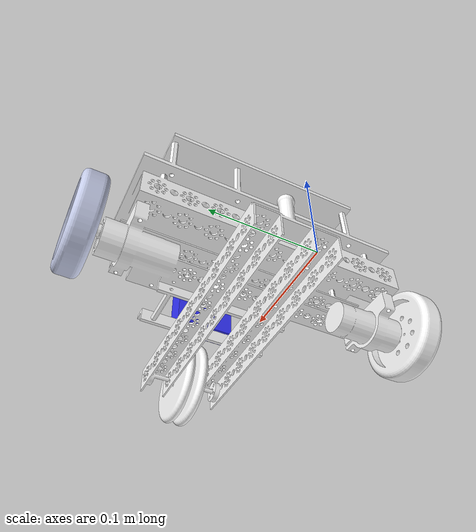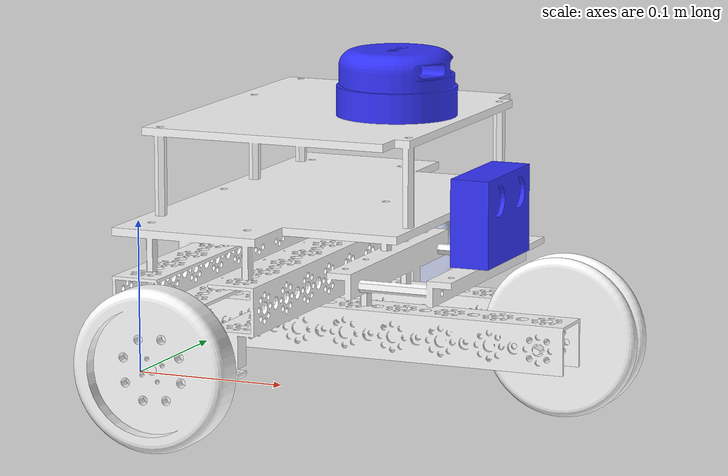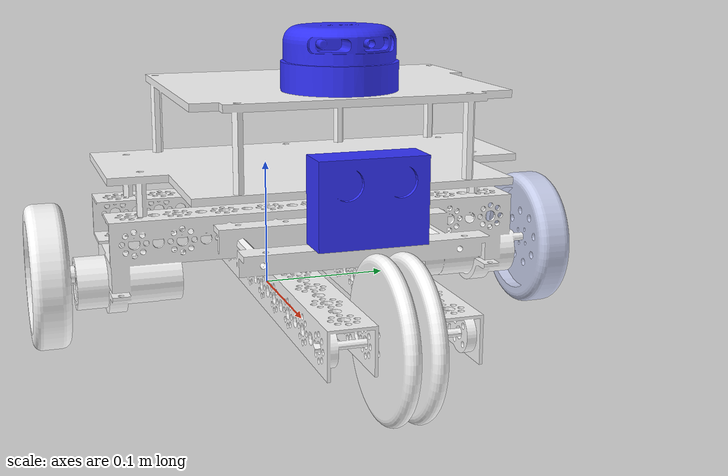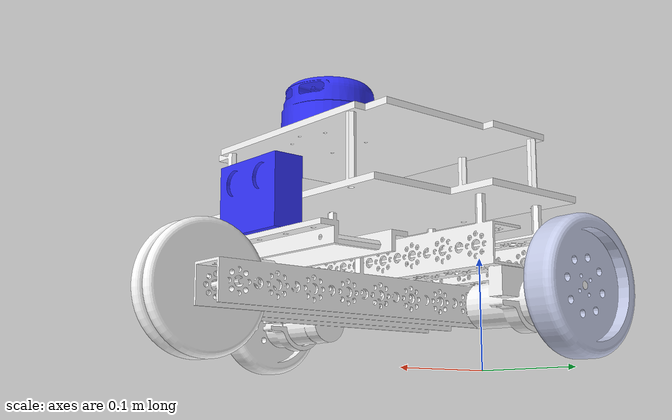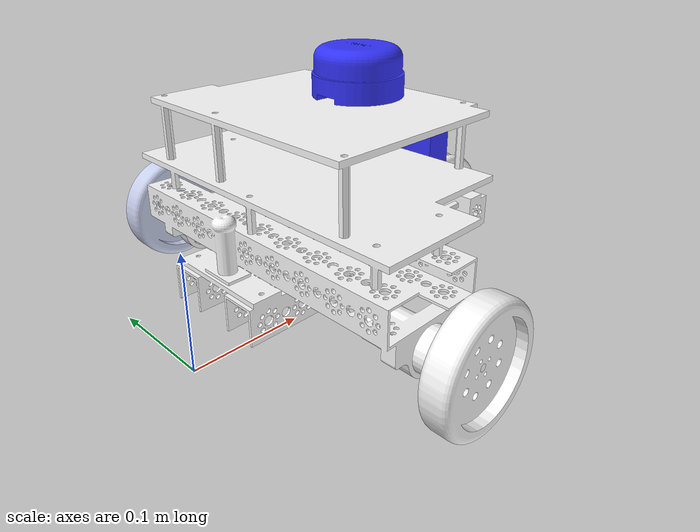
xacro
<?xml version="1.0" encoding="utf-8"?>
<robot name="universal_amr">

  <material name="White">
      <color rgba="1 1 1 1"/>
  </material>

  <material name="Orange">
      <color rgba="1 0.3 0.1 1"/>
  </material>

  <material name="Blue">
      <color rgba="0.2 0.2 1 1"/>
  </material>

  <material name="Black">
      <color rgba="0 0 0 1"/>
  </material>

  <link name="dummy_link">

  </link>

  <joint name="dummy_joint" type="fixed">
    <parent link="dummy_link"/>
    <child link="base_link"/>
  </joint>

  <link name="base_link">
    <visual>
      <origin xyz="0 0 0" rpy="0 0 0" />
      <geometry>
        <mesh filename="package://amr_bot/design/meshes/base_link.stl" />
      </geometry>
      <material name="White"/>
    </visual>
    <collision>
      <origin xyz="0 0 0" rpy="0 0 0" />
      <geometry>
        <mesh filename="package://amr_bot/design/meshes/base_link.stl"/>
      </geometry>
    </collision>
    <inertial>
      <origin xyz="0.1296 0.0014 0.1036" rpy="0 0 0" />
      <mass value="0.8044" />
      <inertia ixx="0.0026" ixy="0.1" ixz="0.1" iyy="0.0015" iyz="0.1" izz="0.0041" />
    </inertial>
  </link>

  <link name="right_wheel">
    <visual>
      <origin xyz="0 0 0" rpy="0 0 0" />
      <geometry>
        <mesh filename="package://amr_bot/design/meshes/right_wheel.stl" />
      </geometry>
      <material name="White"/>
    </visual>
    <collision>
      <origin xyz="0 0 0" rpy="0 0 0" />
      <geometry>
        <mesh filename="package://amr_bot/design/meshes/right_wheel.stl" />
      </geometry>
    </collision>
    <inertial>
      <origin xyz="0 0.0035 0" rpy="0 0 0" />
      <mass value="0.1036" />
      <inertia ixx="0.1" ixy="0.1" ixz="0.1" iyy="0.0002" iyz="0.1" izz="0.1" />
    </inertial>
  </link>

  <joint name="right_wheel_joint" type="continuous">
    <origin xyz="0.1005 -0.1852 0.0495" py="0 0 0" />
    <parent link="base_link" />
    <child link="right_wheel" />
    <axis xyz="0 1 0" />
  </joint>

  <link name="left_wheel">
    <visual>
      <origin xyz="0 0 0" rpy="0 0 0" />
      <geometry>
        <mesh filename="package://amr_bot/design/meshes/left_wheel.stl" />
      </geometry>
      <material name="">
        <color rgba="0.7960 0.8235 0.9372 1" />
      </material>
    </visual>
    <collision>
      <origin xyz="0 0 0" rpy="0 0 0" />
      <geometry>
        <mesh filename="package://amr_bot/design/meshes/left_wheel.stl" />
      </geometry>
    </collision>
    <inertial>
      <origin xyz="-1.5339 -0.0034 -8.1362" rpy="0 0 0" />
      <mass value="0.1036" />
      <inertia ixx="0.1" ixy="-0.1" ixz="0.1" iyy="0.0002" iyz="0.1" izz="0.1" />
    </inertial>
  </link>

  <joint name="left_wheel_joint" type="continuous">
    <origin xyz="0.1016 0.18525 0.0495" rpy="0 0 0" />
    <parent link="base_link" />
    <child link="left_wheel" />
    <axis xyz="0 -1 0" />
  </joint>

  <link name="castor_wheel1">
    <visual>
      <origin xyz="0 0 0" rpy="0 0 0" />
      <geometry>
        <mesh filename="package://amr_bot/design/meshes/castor_wheel1.stl" />
      </geometry>
      <material name="White" />
    </visual>
    <collision>
      <origin xyz="0 0 0" rpy="0 0 0" />
      <geometry>
        <mesh filename="package://amr_bot/design/meshes/castor_wheel1.stl" />
      </geometry>
    </collision>zzzz
    <inertial>
      <origin xyz="0 0 0" rpy="0 0 0" />
      <mass value="0.0742" />
      <inertia ixx="0.1" ixy="0.1" ixz="0.1" iyy="0.1" iyz="0.1" izz="0.1" />
    </inertial>
  </link>

  <joint name="castor_wheel1_joint" type="fixed">
    <origin xyz="0.2929 -0.0080 0.04999" rpy="0 0 0" />
    <parent link="base_link" />
    <child link="castor_wheel1" />
    <axis xyz="0 0 0" />
  </joint>

  <link name="castor_wheel2">
    <visual>
      <origin xyz="0 0 0" rpy="0 0 0" />
      <geometry>
        <mesh filename="package://amr_bot/design/meshes/castor_wheel2.stl" />
      </geometry>
      <material name="White" />
    </visual>
    <collision>
      <origin xyz="0 0 0" rpy="0 0 0" />
      <geometry>
        <mesh filename="package://amr_bot/design/meshes/castor_wheel2.stl" />
      </geometry>
    </collision>
    <inertial>
      <origin xyz="0 0 0" rpy="0 0 0" />
      <mass value="0.0742" />
      <inertia ixx="0.1" ixy="0.1" ixz="0.1" iyy="0.1" iyz="0.1" izz="0.1" />
    </inertial>
  </link>

  <joint name="castor_wheel2_joint" type="fixed">
    <origin xyz="0.2929 0.0079 0.0499" rpy="0 0 0" />
    <parent link="base_link" />
    <child link="castor_wheel2" />
    <axis xyz="0 0 0" />
  </joint>

  <link name="lidar">
    <visual>
      <origin xyz="0 0 0" rpy="0 0 0" />
      <geometry>
        <mesh filename="package://amr_bot/design/meshes/lidar.stl" />
      </geometry>
      <material name="Blue" />
    </visual>
    <collision>
      <origin xyz="0 0 0" rpy="0 0 0" />
      <geometry>
        <mesh filename="package://amr_bot/design/meshes/lidar.stl" />
      </geometry>
    </collision>
    <inertial>
      <origin xyz="-0.03 0 0.0217" rpy="0 0 0" />
      <mass value="0.1653" />
      <inertia ixx="0.1" ixy="0.1" ixz="0.1" iyy="0.1" iyz="0.1" izz="0.0001" />
    </inertial>
  </link>

  <joint name="lidar_joint" type="fixed">
    <origin xyz="0.2085 0.003 0.1775" rpy="0 0 0" />
    <parent link="base_link" />
    <child link="lidar" />
    <axis xyz="0 0 0" />
  </joint>

  <link name="camera">
    <visual>
      <origin xyz="0 0 0" rpy="0 0 0" />
      <geometry>
        <mesh filename="package://amr_bot/design/meshes/camera.stl" />
      </geometry>
      <material name="Blue" />
    </visual>
    <collision>
      <origin xyz="0 0 0" rpy="0 0 0" />
      <geometry>
        <mesh filename="package://amr_bot/design/meshes/camera.stl" />
      </geometry>
    </collision>
    <inertial>
      <origin xyz="-0.0002 0 0.0292" rpy="0 0 0" />
      <mass value="0.0943" />
      <inertia ixx="0.1" ixy="0.1" ixz="0.1" iyy="0.1" iyz="0.1" izz="0.1" />
    </inertial>
  </link>

  <joint name="camera_joint" type="fixed">
    <origin xyz="0.243 0 0.0920" rpy="0 0 0" />
    <parent link="base_link" />
    <child link="camera" />
    <axis xyz="0 0 0" />
  </joint>
</robot>
